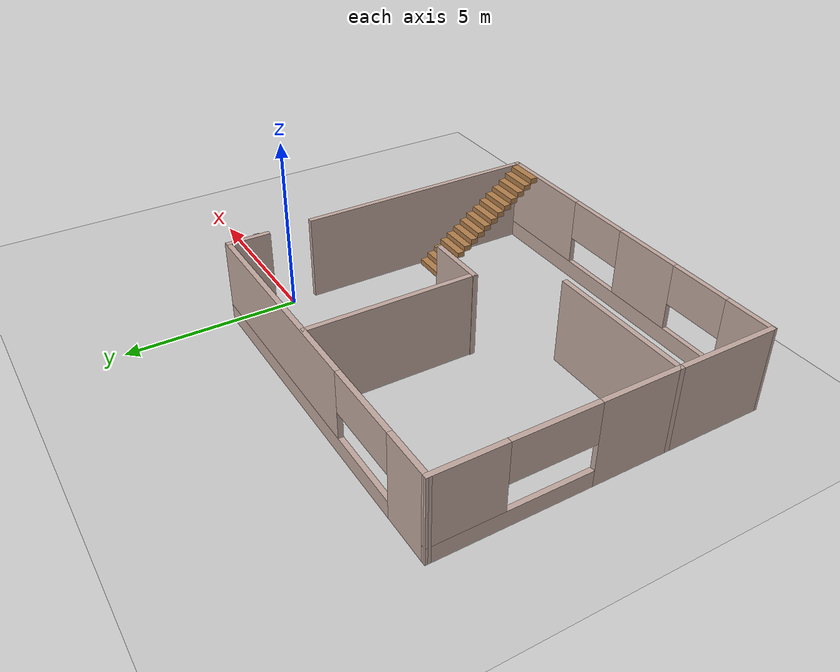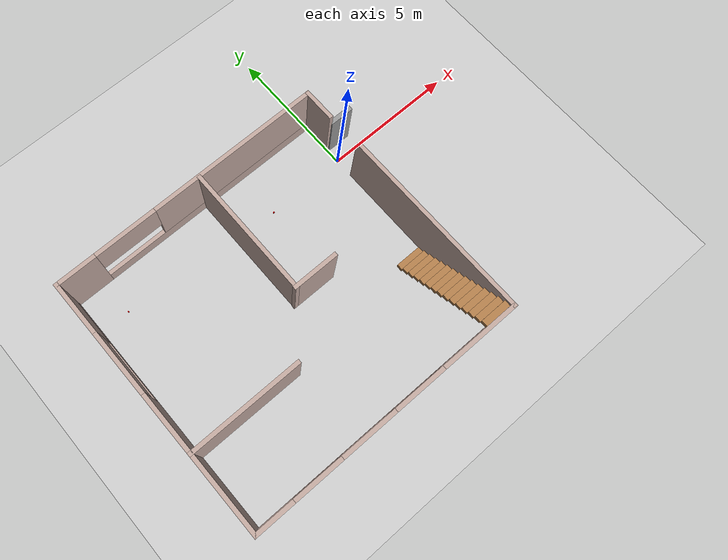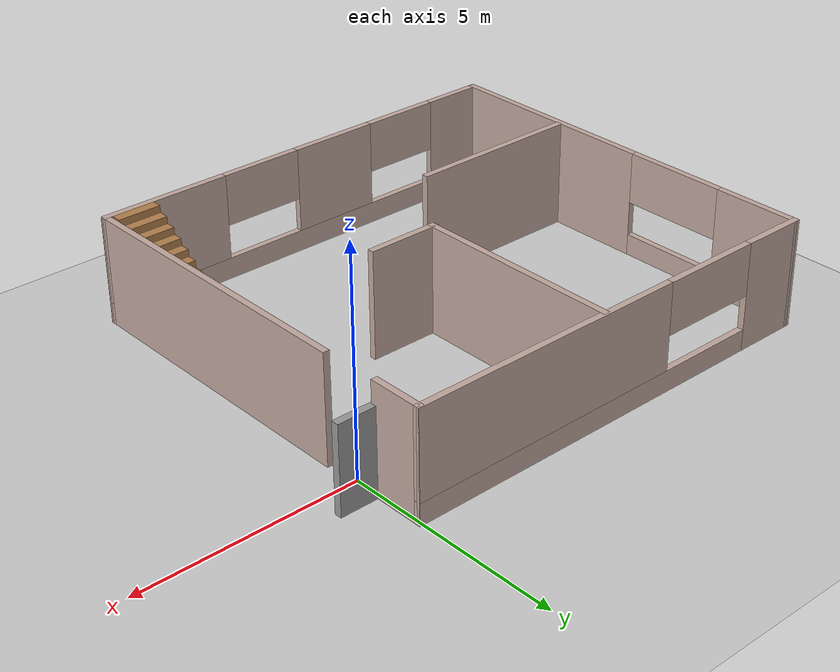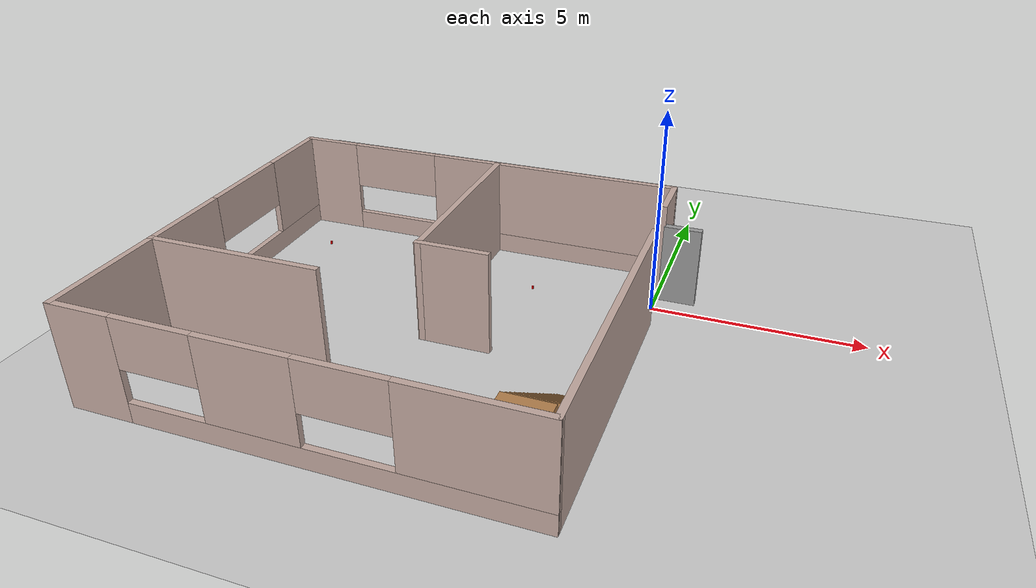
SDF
<sdf version="1.7">
 <world name="default">
  <light name="sun" type="directional">
   <pose>0 0 10 0 -0 0</pose>
   <diffuse>0.8 0.8 0.8 1</diffuse>
   <specular>0.2 0.2 0.2 1</specular>
   <attenuation>
    <range>1000</range>
    <constant>0.9</constant>
    <linear>0.01</linear>
    <quadratic>0.001</quadratic>
   </attenuation>
   <direction>-0.5 0.1 -0.9</direction>
   <spot><inner_angle>0</inner_angle><outer_angle>0</outer_angle><falloff>0</falloff></spot>
  </light>
  <model name="ground_plane">
   <static>1</static>
   <link name="link">
    <collision name="collision">
     <geometry><plane><normal>0 0 1</normal><size>100 100</size></plane></geometry>
     <surface><friction><ode><mu>100</mu><mu2>50</mu2></ode></friction></surface>
    </collision>
    <visual name="visual">
     <cast_shadows>0</cast_shadows>
     <geometry><plane><normal>0 0 1</normal><size>100 100</size></plane></geometry>
     <material>
      <script><uri>file://media/materials/scripts/gazebo.material</uri><name>Gazebo/Grey</name></script>
     </material>
    </visual>
   </link>
  </model>
  <gravity>0 0 -9.8</gravity>
  <magnetic_field>6e-06 2.3e-05 -4.2e-05</magnetic_field>
  <atmosphere type="adiabatic"/>
  <physics type="ode">
   <max_step_size>0.001</max_step_size>
   <real_time_factor>1</real_time_factor>
   <real_time_update_rate>1000</real_time_update_rate>
  </physics>
  <scene><ambient>0.4 0.4 0.4 1</ambient><background>0.7 0.7 0.7 1</background><shadows>1</shadows></scene>
  <audio><device>default</device></audio>
  <spherical_coordinates>
   <surface_model>EARTH_WGS84</surface_model>
   <latitude_deg>0</latitude_deg>
   <longitude_deg>0</longitude_deg>
   <elevation>0</elevation>
   <heading_deg>0</heading_deg>
  </spherical_coordinates>
  <model name="room2">
   <pose>-5.09563 -3.06584 0 0 -0 0</pose>
   <link name="Door_0">
    <collision name="Door_0_Collision">
     <geometry><box><size>0.9 0.17 2</size></box></geometry>
     <pose>0 0 1 0 -0 0</pose>
    </collision>
    <visual name="Door_0_Visual">
     <pose>0 0 1 0 -0 0</pose>
     <geometry><box><size>0.9 0.17 2</size></box></geometry>
     <material>
      <script><uri>file://media/materials/scripts/gazebo.material</uri><name>Gazebo/Grey</name></script>
     </material>
    </visual>
    <pose>5.59901 3.66029 0 0 -0 0</pose>
   </link>
   <link name="Stairs_0">
    <visual name="Stairs_0_Visual_0">
     <pose>4.54808 -1.34936 0.083333 0 -0 0</pose>
     <geometry><box><size>1 0.233333 0.166667</size></box></geometry>
     <material>
      <script><uri>file://media/materials/scripts/gazebo.material</uri><name>Gazebo/Wood</name></script>
      <ambient>1 1 1 1</ambient>
     </material>
     <meta><layer>0</layer></meta>
    </visual>
    <collision name="Stairs_0_Collision_0">
     <geometry><box><size>1 0.233333 0.166667</size></box></geometry>
     <pose>4.54808 -1.34936 0.083333 0 -0 0</pose>
    </collision>
    <visual name="Stairs_0_Visual_1">
     <pose>4.54808 -1.5827 0.25 0 -0 0</pose>
     <geometry><box><size>1 0.233333 0.166667</size></box></geometry>
     <material>
      <script><uri>file://media/materials/scripts/gazebo.material</uri><name>Gazebo/Wood</name></script>
      <ambient>1 1 1 1</ambient>
     </material>
     <meta><layer>0</layer></meta>
    </visual>
    <collision name="Stairs_0_Collision_1">
     <geometry><box><size>1 0.233333 0.166667</size></box></geometry>
     <pose>4.54808 -1.5827 0.25 0 -0 0</pose>
    </collision>
    <visual name="Stairs_0_Visual_2">
     <pose>4.54808 -1.81603 0.416667 0 -0 0</pose>
     <geometry><box><size>1 0.233333 0.166667</size></box></geometry>
     <material>
      <script><uri>file://media/materials/scripts/gazebo.material</uri><name>Gazebo/Wood</name></script>
      <ambient>1 1 1 1</ambient>
     </material>
     <meta><layer>0</layer></meta>
    </visual>
    <collision name="Stairs_0_Collision_2">
     <geometry><box><size>1 0.233333 0.166667</size></box></geometry>
     <pose>4.54808 -1.81603 0.416667 0 -0 0</pose>
    </collision>
    <visual name="Stairs_0_Visual_3">
     <pose>4.54808 -2.04936 0.583333 0 -0 0</pose>
     <geometry><box><size>1 0.233333 0.166667</size></box></geometry>
     <material>
      <script><uri>file://media/materials/scripts/gazebo.material</uri><name>Gazebo/Wood</name></script>
      <ambient>1 1 1 1</ambient>
     </material>
     <meta><layer>0</layer></meta>
    </visual>
    <collision name="Stairs_0_Collision_3">
     <geometry><box><size>1 0.233333 0.166667</size></box></geometry>
     <pose>4.54808 -2.04936 0.583333 0 -0 0</pose>
    </collision>
    <visual name="Stairs_0_Visual_4">
     <pose>4.54808 -2.2827 0.75 0 -0 0</pose>
     <geometry><box><size>1 0.233333 0.166667</size></box></geometry>
     <material>
      <script><uri>file://media/materials/scripts/gazebo.material</uri><name>Gazebo/Wood</name></script>
      <ambient>1 1 1 1</ambient>
     </material>
     <meta><layer>0</layer></meta>
    </visual>
    <collision name="Stairs_0_Collision_4">
     <geometry><box><size>1 0.233333 0.166667</size></box></geometry>
     <pose>4.54808 -2.2827 0.75 0 -0 0</pose>
    </collision>
    <visual name="Stairs_0_Visual_5">
     <pose>4.54808 -2.51603 0.916667 0 -0 0</pose>
     <geometry><box><size>1 0.233333 0.166667</size></box></geometry>
     <material>
      <script><uri>file://media/materials/scripts/gazebo.material</uri><name>Gazebo/Wood</name></script>
      <ambient>1 1 1 1</ambient>
     </material>
     <meta><layer>0</layer></meta>
    </visual>
    <collision name="Stairs_0_Collision_5">
     <geometry><box><size>1 0.233333 0.166667</size></box></geometry>
     <pose>4.54808 -2.51603 0.916667 0 -0 0</pose>
    </collision>
    <visual name="Stairs_0_Visual_6">
     <pose>4.54808 -2.74936 1.08333 0 -0 0</pose>
     <geometry><box><size>1 0.233333 0.166667</size></box></geometry>
     <material>
      <script><uri>file://media/materials/scripts/gazebo.material</uri><name>Gazebo/Wood</name></script>
      <ambient>1 1 1 1</ambient>
     </material>
     <meta><layer>0</layer></meta>
    </visual>
    <collision name="Stairs_0_Collision_6">
     <geometry><box><size>1 0.233333 0.166667</size></box></geometry>
     <pose>4.54808 -2.74936 1.08333 0 -0 0</pose>
    </collision>
    <visual name="Stairs_0_Visual_7">
     <pose>4.54808 -2.9827 1.25 0 -0 0</pose>
     <geometry><box><size>1 0.233333 0.166667</size></box></geometry>
     <material>
      <script><uri>file://media/materials/scripts/gazebo.material</uri><name>Gazebo/Wood</name></script>
      <ambient>1 1 1 1</ambient>
     </material>
     <meta><layer>0</layer></meta>
    </visual>
    <collision name="Stairs_0_Collision_7">
     <geometry><box><size>1 0.233333 0.166667</size></box></geometry>
     <pose>4.54808 -2.9827 1.25 0 -0 0</pose>
    </collision>
    <visual name="Stairs_0_Visual_8">
     <pose>4.54808 -3.21603 1.41667 0 -0 0</pose>
     <geometry><box><size>1 0.233333 0.166667</size></box></geometry>
     <material>
      <script><uri>file://media/materials/scripts/gazebo.material</uri><name>Gazebo/Wood</name></script>
      <ambient>1 1 1 1</ambient>
     </material>
     <meta><layer>0</layer></meta>
    </visual>
    <collision name="Stairs_0_Collision_8">
     <geometry><box><size>1 0.233333 0.166667</size></box></geometry>
     <pose>4.54808 -3.21603 1.41667 0 -0 0</pose>
    </collision>
    <visual name="Stairs_0_Visual_9">
     <pose>4.54808 -3.44936 1.58333 0 -0 0</pose>
     <geometry><box><size>1 0.233333 0.166667</size></box></geometry>
     <material>
      <script><uri>file://media/materials/scripts/gazebo.material</uri><name>Gazebo/Wood</name></script>
      <ambient>1 1 1 1</ambient>
     </material>
     <meta><layer>0</layer></meta>
    </visual>
    <collision name="Stairs_0_Collision_9">
     <geometry><box><size>1 0.233333 0.166667</size></box></geometry>
     <pose>4.54808 -3.44936 1.58333 0 -0 0</pose>
    </collision>
    <visual name="Stairs_0_Visual_10">
     <pose>4.54808 -3.6827 1.75 0 -0 0</pose>
     <geometry><box><size>1 0.233333 0.166667</size></box></geometry>
     <material>
      <script><uri>file://media/materials/scripts/gazebo.material</uri><name>Gazebo/Wood</name></script>
      <ambient>1 1 1 1</ambient>
     </material>
     <meta><layer>0</layer></meta>
    </visual>
    <collision name="Stairs_0_Collision_10">
     <geometry><box><size>1 0.233333 0.166667</size></box></geometry>
     <pose>4.54808 -3.6827 1.75 0 -0 0</pose>
    </collision>
    <visual name="Stairs_0_Visual_11">
     <pose>4.54808 -3.91603 1.91667 0 -0 0</pose>
     <geometry><box><size>1 0.233333 0.166667</size></box></geometry>
     <material>
      <script><uri>file://media/materials/scripts/gazebo.material</uri><name>Gazebo/Wood</name></script>
      <ambient>1 1 1 1</ambient>
     </material>
     <meta><layer>0</layer></meta>
    </visual>
    <collision name="Stairs_0_Collision_11">
     <geometry><box><size>1 0.233333 0.166667</size></box></geometry>
     <pose>4.54808 -3.91603 1.91667 0 -0 0</pose>
    </collision>
    <visual name="Stairs_0_Visual_12">
     <pose>4.54808 -4.14936 2.08333 0 -0 0</pose>
     <geometry><box><size>1 0.233333 0.166667</size></box></geometry>
     <material>
      <script><uri>file://media/materials/scripts/gazebo.material</uri><name>Gazebo/Wood</name></script>
      <ambient>1 1 1 1</ambient>
     </material>
     <meta><layer>0</layer></meta>
    </visual>
    <collision name="Stairs_0_Collision_12">
     <geometry><box><size>1 0.233333 0.166667</size></box></geometry>
     <pose>4.54808 -4.14936 2.08333 0 -0 0</pose>
    </collision>
    <visual name="Stairs_0_Visual_13">
     <pose>4.54808 -4.3827 2.25 0 -0 0</pose>
     <geometry><box><size>1 0.233333 0.166667</size></box></geometry>
     <material>
      <script><uri>file://media/materials/scripts/gazebo.material</uri><name>Gazebo/Wood</name></script>
      <ambient>1 1 1 1</ambient>
     </material>
     <meta><layer>0</layer></meta>
    </visual>
    <collision name="Stairs_0_Collision_13">
     <geometry><box><size>1 0.233333 0.166667</size></box></geometry>
     <pose>4.54808 -4.3827 2.25 0 -0 0</pose>
    </collision>
    <visual name="Stairs_0_Visual_14">
     <pose>4.54808 -4.61603 2.41667 0 -0 0</pose>
     <geometry><box><size>1 0.233333 0.166667</size></box></geometry>
     <material>
      <script><uri>file://media/materials/scripts/gazebo.material</uri><name>Gazebo/Wood</name></script>
      <ambient>1 1 1 1</ambient>
     </material>
     <meta><layer>0</layer></meta>
    </visual>
    <collision name="Stairs_0_Collision_14">
     <geometry><box><size>1 0.233333 0.166667</size></box></geometry>
     <pose>4.54808 -4.61603 2.41667 0 -0 0</pose>
    </collision>
   </link>
   <link name="Wall_0">
    <pose>0.020197 -4.8 0 0 -0 -0.00169</pose>
    <visual name="Wall_0_Visual_0">
     <pose>-4.46751 0 1.25 0 -0 0</pose>
     <geometry><box><size>1.50417 0.15 2.5</size></box></geometry>
     <material>
      <script><uri>file://media/materials/scripts/gazebo.material</uri><name>Gazebo/Grey</name></script>
      <ambient>0.760784 0.662745 0.627451 1</ambient>
     </material>
     <meta><layer>0</layer></meta>
    </visual>
    <collision name="Wall_0_Collision_0">
     <geometry><box><size>1.50417 0.15 2.5</size></box></geometry>
     <pose>-4.46751 0 1.25 0 -0 0</pose>
    </collision>
    <visual name="Wall_0_Visual_1">
     <pose>0.752085 0 0.25 0 -0 0</pose>
     <geometry><box><size>8.93502 0.15 0.5</size></box></geometry>
     <material>
      <script><uri>file://media/materials/scripts/gazebo.material</uri><name>Gazebo/Grey</name></script>
      <ambient>0.760784 0.662745 0.627451 1</ambient>
     </material>
     <meta><layer>0</layer></meta>
    </visual>
    <collision name="Wall_0_Collision_1">
     <geometry><box><size>8.93502 0.15 0.5</size></box></geometry>
     <pose>0.752085 0 0.25 0 -0 0</pose>
    </collision>
    <visual name="Wall_0_Visual_2">
     <pose>-0.820202 0 1.5 0 -0 0</pose>
     <geometry><box><size>2.10479 0.15 2</size></box></geometry>
     <material>
      <script><uri>file://media/materials/scripts/gazebo.material</uri><name>Gazebo/Grey</name></script>
      <ambient>0.760784 0.662745 0.627451 1</ambient>
     </material>
     <meta><layer>0</layer></meta>
    </visual>
    <collision name="Wall_0_Collision_2">
     <geometry><box><size>2.10479 0.15 2</size></box></geometry>
     <pose>-0.820202 0 1.5 0 -0 0</pose>
    </collision>
    <visual name="Wall_0_Visual_3">
     <pose>3.69979 0 1.5 0 -0 0</pose>
     <geometry><box><size>3.03961 0.15 2</size></box></geometry>
     <material>
      <script><uri>file://media/materials/scripts/gazebo.material</uri><name>Gazebo/Grey</name></script>
      <ambient>0.760784 0.662745 0.627451 1</ambient>
     </material>
     <meta><layer>0</layer></meta>
    </visual>
    <collision name="Wall_0_Collision_3">
     <geometry><box><size>3.03961 0.15 2</size></box></geometry>
     <pose>3.69979 0 1.5 0 -0 0</pose>
    </collision>
    <visual name="Wall_0_Visual_4">
     <pose>-2.79401 0 1.9 0 -0 0</pose>
     <geometry><box><size>1.84283 0.15 1.2</size></box></geometry>
     <material>
      <script><uri>file://media/materials/scripts/gazebo.material</uri><name>Gazebo/Grey</name></script>
      <ambient>0.760784 0.662745 0.627451 1</ambient>
     </material>
     <meta><layer>0</layer></meta>
    </visual>
    <collision name="Wall_0_Collision_4">
     <geometry><box><size>1.84283 0.15 1.2</size></box></geometry>
     <pose>-2.79401 0 1.9 0 -0 0</pose>
    </collision>
    <visual name="Wall_0_Visual_5">
     <pose>1.20609 0 1.9 0 -0 0</pose>
     <geometry><box><size>1.94779 0.15 1.2</size></box></geometry>
     <material>
      <script><uri>file://media/materials/scripts/gazebo.material</uri><name>Gazebo/Grey</name></script>
      <ambient>0.760784 0.662745 0.627451 1</ambient>
     </material>
     <meta><layer>0</layer></meta>
    </visual>
    <collision name="Wall_0_Collision_5">
     <geometry><box><size>1.94779 0.15 1.2</size></box></geometry>
     <pose>1.20609 0 1.9 0 -0 0</pose>
    </collision>
   </link>
   <link name="Wall_10">
    <collision name="Wall_10_Collision">
     <geometry><box><size>1.75 0.15 2.5</size></box></geometry>
     <pose>0 0 1.25 0 -0 0</pose>
    </collision>
    <visual name="Wall_10_Visual">
     <pose>0 0 1.25 0 -0 0</pose>
     <geometry><box><size>1.75 0.15 2.5</size></box></geometry>
     <material>
      <script><uri>file://media/materials/scripts/gazebo.material</uri><name>Gazebo/Grey</name></script>
      <ambient>0.760784 0.662745 0.627451 1</ambient>
     </material>
     <meta><layer>0</layer></meta>
    </visual>
    <pose>1.23583 -0.025594 0 0 -0 0</pose>
   </link>
   <link name="Wall_17">
    <collision name="Wall_17_Collision">
     <geometry><box><size>4.25 0.15 2.5</size></box></geometry>
     <pose>0 0 1.25 0 -0 0</pose>
    </collision>
    <visual name="Wall_17_Visual">
     <pose>0 0 1.25 0 -0 0</pose>
     <geometry><box><size>4.25 0.15 2.5</size></box></geometry>
     <material>
      <script><uri>file://media/materials/scripts/gazebo.material</uri><name>Gazebo/Grey</name></script>
      <ambient>0.760784 0.662745 0.627451 1</ambient>
     </material>
     <meta><layer>0</layer></meta>
    </visual>
    <pose>-3.08733 -1.85552 0 0 -0 0</pose>
   </link>
   <link name="Wall_2">
    <pose>-5.14448 0.008696 0 0 -0 1.575</pose>
    <visual name="Wall_2_Visual_0">
     <pose>-2.23354 0 1.25 0 -0 0</pose>
     <geometry><box><size>5.24822 0.15 2.5</size></box></geometry>
     <material>
      <script><uri>file://media/materials/scripts/gazebo.material</uri><name>Gazebo/Grey</name></script>
      <ambient>0.760784 0.662745 0.627451 1</ambient>
     </material>
     <meta><layer>0</layer></meta>
    </visual>
    <collision name="Wall_2_Collision_0">
     <geometry><box><size>5.24822 0.15 2.5</size></box></geometry>
     <pose>-2.23354 0 1.25 0 -0 0</pose>
    </collision>
    <visual name="Wall_2_Visual_1">
     <pose>2.62411 0 0.25 0 -0 0</pose>
     <geometry><box><size>4.46709 0.15 0.5</size></box></geometry>
     <material>
      <script><uri>file://media/materials/scripts/gazebo.material</uri><name>Gazebo/Grey</name></script>
      <ambient>0.760784 0.662745 0.627451 1</ambient>
     </material>
     <meta><layer>0</layer></meta>
    </visual>
    <collision name="Wall_2_Collision_1">
     <geometry><box><size>4.46709 0.15 0.5</size></box></geometry>
     <pose>2.62411 0 0.25 0 -0 0</pose>
    </collision>
    <visual name="Wall_2_Visual_2">
     <pose>3.83298 0 1.5 0 -0 0</pose>
     <geometry><box><size>2.04934 0.15 2</size></box></geometry>
     <material>
      <script><uri>file://media/materials/scripts/gazebo.material</uri><name>Gazebo/Grey</name></script>
      <ambient>0.760784 0.662745 0.627451 1</ambient>
     </material>
     <meta><layer>0</layer></meta>
    </visual>
    <collision name="Wall_2_Collision_2">
     <geometry><box><size>2.04934 0.15 2</size></box></geometry>
     <pose>3.83298 0 1.5 0 -0 0</pose>
    </collision>
    <visual name="Wall_2_Visual_3">
     <pose>1.59943 0 1.9 0 -0 0</pose>
     <geometry><box><size>2.41774 0.15 1.2</size></box></geometry>
     <material>
      <script><uri>file://media/materials/scripts/gazebo.material</uri><name>Gazebo/Grey</name></script>
      <ambient>0.760784 0.662745 0.627451 1</ambient>
     </material>
     <meta><layer>0</layer></meta>
    </visual>
    <collision name="Wall_2_Collision_3">
     <geometry><box><size>2.41774 0.15 1.2</size></box></geometry>
     <pose>1.59943 0 1.9 0 -0 0</pose>
    </collision>
   </link>
   <link name="Wall_4">
    <pose>-0.028726 4.8 0 0 -0 0.001693</pose>
    <visual name="Wall_4_Visual_0">
     <pose>-4.43442 0 1.25 0 -0 0</pose>
     <geometry><box><size>1.55291 0.15 2.5</size></box></geometry>
     <material>
      <script><uri>file://media/materials/scripts/gazebo.material</uri><name>Gazebo/Grey</name></script>
      <ambient>0.760784 0.662745 0.627451 1</ambient>
     </material>
     <meta><layer>0</layer></meta>
    </visual>
    <collision name="Wall_4_Collision_0">
     <geometry><box><size>1.55291 0.15 2.5</size></box></geometry>
     <pose>-4.43442 0 1.25 0 -0 0</pose>
    </collision>
    <visual name="Wall_4_Visual_1">
     <pose>0.776454 0 0.25 0 -0 0</pose>
     <geometry><box><size>8.86885 0.15 0.5</size></box></geometry>
     <material>
      <script><uri>file://media/materials/scripts/gazebo.material</uri><name>Gazebo/Grey</name></script>
      <ambient>0.760784 0.662745 0.627451 1</ambient>
     </material>
     <meta><layer>0</layer></meta>
    </visual>
    <collision name="Wall_4_Collision_1">
     <geometry><box><size>8.86885 0.15 0.5</size></box></geometry>
     <pose>0.776454 0 0.25 0 -0 0</pose>
    </collision>
    <visual name="Wall_4_Visual_2">
     <pose>1.9505 0 1.5 0 -0 0</pose>
     <geometry><box><size>6.52076 0.15 2</size></box></geometry>
     <material>
      <script><uri>file://media/materials/scripts/gazebo.material</uri><name>Gazebo/Grey</name></script>
      <ambient>0.760784 0.662745 0.627451 1</ambient>
     </material>
     <meta><layer>0</layer></meta>
    </visual>
    <collision name="Wall_4_Collision_2">
     <geometry><box><size>6.52076 0.15 2</size></box></geometry>
     <pose>1.9505 0 1.5 0 -0 0</pose>
    </collision>
    <visual name="Wall_4_Visual_3">
     <pose>-2.48392 0 1.9 0 -0 0</pose>
     <geometry><box><size>2.34809 0.15 1.2</size></box></geometry>
     <material>
      <script><uri>file://media/materials/scripts/gazebo.material</uri><name>Gazebo/Grey</name></script>
      <ambient>0.760784 0.662745 0.627451 1</ambient>
     </material>
     <meta><layer>0</layer></meta>
    </visual>
    <collision name="Wall_4_Collision_3">
     <geometry><box><size>2.34809 0.15 1.2</size></box></geometry>
     <pose>-2.48392 0 1.9 0 -0 0</pose>
    </collision>
   </link>
   <link name="Wall_5">
    <collision name="Wall_5_Collision">
     <geometry><box><size>1.25 0.15 2.5</size></box></geometry>
     <pose>0 0 1.25 0 -0 0</pose>
    </collision>
    <visual name="Wall_5_Visual">
     <pose>0 0 1.25 0 -0 0</pose>
     <geometry><box><size>1.25 0.15 2.5</size></box></geometry>
     <material>
      <script><uri>file://media/materials/scripts/gazebo.material</uri><name>Gazebo/Grey</name></script>
      <ambient>0.760784 0.662745 0.627451 1</ambient>
     </material>
     <meta><layer>0</layer></meta>
    </visual>
    <pose>5.10714 4.2413 0 0 -0 -1.5708</pose>
   </link>
   <link name="Wall_7">
    <collision name="Wall_7_Collision">
     <geometry><box><size>7.23261 0.15 2.5</size></box></geometry>
     <pose>0 0 1.25 0 -0 0</pose>
    </collision>
    <visual name="Wall_7_Visual">
     <pose>0 0 1.25 0 -0 0</pose>
     <geometry><box><size>7.23261 0.15 2.5</size></box></geometry>
     <material>
      <script><uri>file://media/materials/scripts/gazebo.material</uri><name>Gazebo/Grey</name></script>
      <ambient>0.760784 0.662745 0.627451 1</ambient>
     </material>
     <meta><layer>0</layer></meta>
    </visual>
    <pose>5.16476 -1.25 0 0 -0 1.5708</pose>
   </link>
   <link name="Wall_9">
    <collision name="Wall_9_Collision">
     <geometry><box><size>4.93056 0.15 2.5</size></box></geometry>
     <pose>0 0 1.25 0 -0 0</pose>
    </collision>
    <visual name="Wall_9_Visual">
     <pose>0 0 1.25 0 -0 0</pose>
     <geometry><box><size>4.93056 0.15 2.5</size></box></geometry>
     <material>
      <script><uri>file://media/materials/scripts/gazebo.material</uri><name>Gazebo/Grey</name></script>
      <ambient>0.760784 0.662745 0.627451 1</ambient>
     </material>
     <meta><layer>0</layer></meta>
    </visual>
    <pose>0.453219 2.36462 0 0 -0 -1.5708</pose>
   </link>
   <static>1</static>
  </model>
  <model name="Untitled">
   <link name="link_1">
    <inertial>
     <mass>0.00066361</mass>
     <inertia><ixx>7.3e-07</ixx><ixy>0</ixy><ixz>0</ixz><iyy>9.7e-07</iyy><iyz>0</iyz><izz>8.6e-07</izz></inertia>
    </inertial>
    <visual name="visual">
     <geometry><box><size>0.040887 0.040961 0.0768953</size></box></geometry>
     <material>
      <lighting>1</lighting>
      <script><uri>file://media/materials/scripts/gazebo.material</uri><name>Gazebo/Grey</name></script>
      <shader type="pixel"><normal_map>__default__</normal_map></shader>
      <ambient>1 0 0 1</ambient>
      <diffuse>1 0 0 0</diffuse>
      <specular>1 0.01 0.01 1</specular>
      <emissive>0 0 0 1</emissive>
     </material>
    </visual>
    <collision name="collision">
     <geometry><box><size>0.040887 0.040961 0.0768953</size></box></geometry>
     <surface>
      <friction>
       <ode><mu>1e+06</mu><mu2>1e+06</mu2><fdir1>0 0 0</fdir1><slip1>0</slip1><slip2>0</slip2></ode>
       <torsional>
        <coefficient>1</coefficient>
        <patch_radius>0</patch_radius>
        <surface_radius>0</surface_radius>
        <use_patch_radius>1</use_patch_radius>
        <ode><slip>0</slip></ode>
       </torsional>
      </friction>
      <bounce><restitution_coefficient>0</restitution_coefficient><threshold>1e+06</threshold></bounce>
      <contact>
       <collide_without_contact>0</collide_without_contact>
       <collide_without_contact_bitmask>1</collide_without_contact_bitmask>
       <collide_bitmask>1</collide_bitmask>
       <ode>
        <soft_cfm>0</soft_cfm>
        <soft_erp>0.2</soft_erp>
        <kp>1e+13</kp>
        <kd>1</kd>
        <max_vel>0.01</max_vel>
        <min_depth>0</min_depth>
       </ode>
       <bullet>
        <split_impulse>1</split_impulse>
        <split_impulse_penetration_threshold>-0.01</split_impulse_penetration_threshold>
        <soft_cfm>0</soft_cfm>
        <soft_erp>0.2</soft_erp>
        <kp>1e+13</kp>
        <kd>1</kd>
       </bullet>
      </contact>
     </surface>
    </collision>
   </link>
   <static>0</static>
   <pose>-3.02431 -0.045109 0.038442 -2e-05 1.6e-05 -2.2e-05</pose>
  </model>
  <model name="Untitled_clone">
   <link name="link_1">
    <inertial>
     <mass>0.00066361</mass>
     <inertia><ixx>7.3e-07</ixx><ixy>0</ixy><ixz>0</ixz><iyy>9.7e-07</iyy><iyz>0</iyz><izz>8.6e-07</izz></inertia>
    </inertial>
    <visual name="visual">
     <geometry><box><size>0.040887 0.040961 0.076895</size></box></geometry>
     <material>
      <lighting>1</lighting>
      <script><uri>file://media/materials/scripts/gazebo.material</uri><name>Gazebo/Grey</name></script>
      <shader type="pixel"><normal_map>__default__</normal_map></shader>
      <ambient>1 0 0 1</ambient>
      <diffuse>1 0 0 0</diffuse>
      <specular>1 0.01 0.01 1</specular>
      <emissive>0 0 0 1</emissive>
     </material>
    </visual>
    <collision name="collision">
     <geometry><box><size>0.040887 0.040961 0.076895</size></box></geometry>
     <surface>
      <friction>
       <ode><mu>1e+06</mu><mu2>1e+06</mu2><fdir1>0 0 0</fdir1><slip1>0</slip1><slip2>0</slip2></ode>
       <torsional>
        <coefficient>1</coefficient>
        <patch_radius>0</patch_radius>
        <surface_radius>0</surface_radius>
        <use_patch_radius>1</use_patch_radius>
        <ode><slip>0</slip></ode>
       </torsional>
      </friction>
      <bounce><restitution_coefficient>0</restitution_coefficient><threshold>1e+06</threshold></bounce>
      <contact>
       <collide_without_contact>0</collide_without_contact>
       <collide_without_contact_bitmask>1</collide_without_contact_bitmask>
       <collide_bitmask>1</collide_bitmask>
       <ode>
        <soft_cfm>0</soft_cfm>
        <soft_erp>0.2</soft_erp>
        <kp>1e+13</kp>
        <kd>1</kd>
        <max_vel>0.01</max_vel>
        <min_depth>0</min_depth>
       </ode>
       <bullet>
        <split_impulse>1</split_impulse>
        <split_impulse_penetration_threshold>-0.01</split_impulse_penetration_threshold>
        <soft_cfm>0</soft_cfm>
        <soft_erp>0.2</soft_erp>
        <kp>1e+13</kp>
        <kd>1</kd>
       </bullet>
      </contact>
     </surface>
    </collision>
   </link>
   <static>0</static>
   <pose>-9.08935 0.390982 0.038443 2e-05 -1.6e-05 -2.2e-05</pose>
  </model>
 </world>
</sdf>
